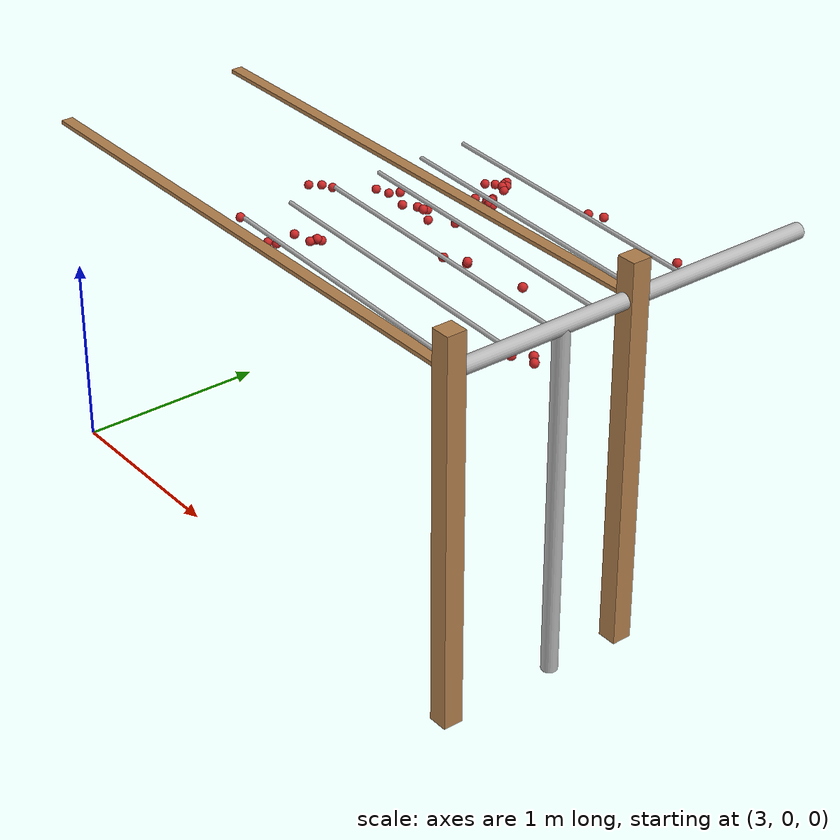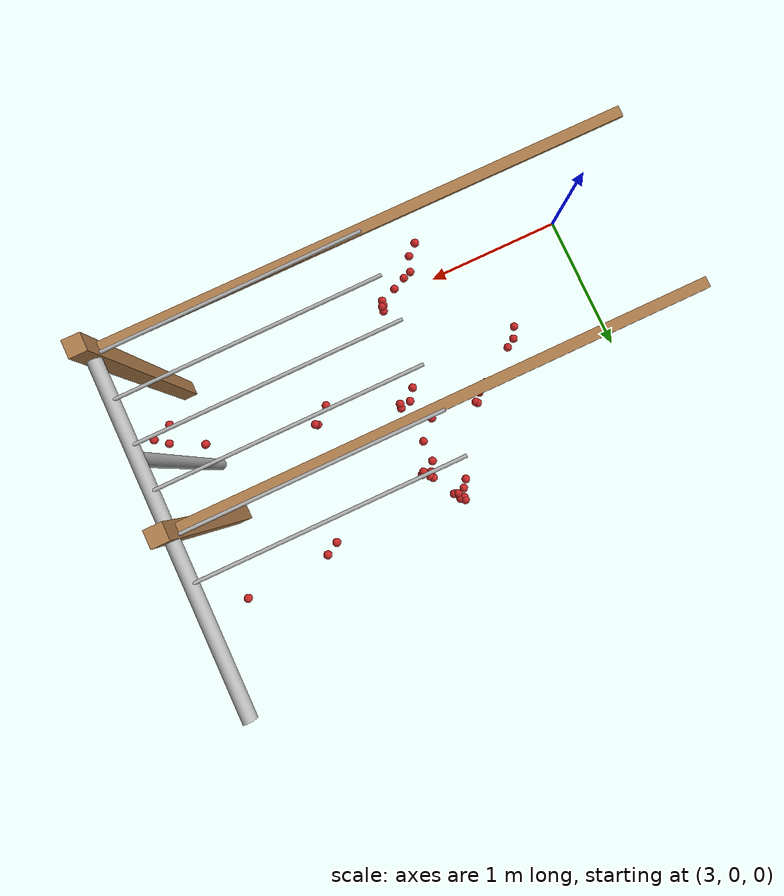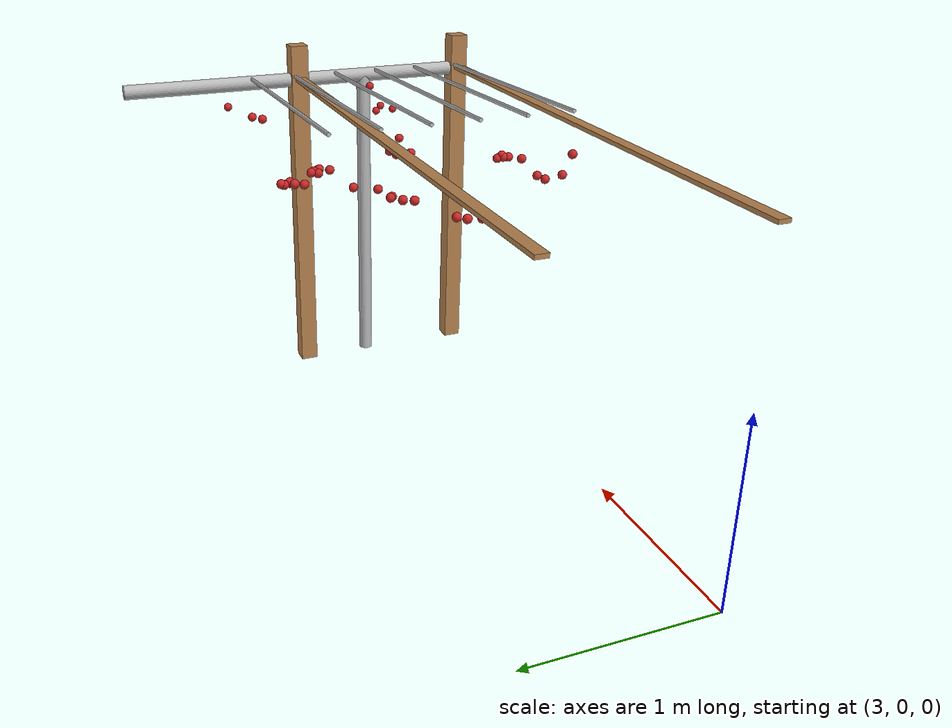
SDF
<sdf version="1.4">
 <model name="pergola">
  <include><name>post_12</name><pose>6.0 0.0 0 0 0 0</pose><uri>model://post</uri></include>
  <include><name>post_13</name><pose>6.0 1.0 0 0 0 0</pose><uri>model://post</uri></include>
  <link name="beam_6">
   <pose>4.5 0.0 1.81 0 0 0</pose>
   <collision name="collision"><geometry><box><size>3.0 0.06 0.02</size></box></geometry></collision>
   <visual name="visual">
    <geometry><box><size>3.0 0.06 0.02</size></box></geometry>
    <material>
     <script>
      <uri>model://post/materials/scripts</uri>
      <uri>model://post/materials/textures</uri>
      <name>Post/Wood</name>
     </script>
    </material>
   </visual>
   <inertial>
    <mass>5</mass>
    <inertia>
     <ixx>0.0016666666666666668</ixx>
     <ixy>0.0</ixy>
     <ixz>0.0</ixz>
     <iyy>3.7515</iyy>
     <iyz>0.0</iyz>
     <izz>3.750166666666667</izz>
    </inertia>
   </inertial>
  </link>
  <link name="beam_7">
   <pose>4.5 1.0 1.81 0 0 0</pose>
   <collision name="collision"><geometry><box><size>3.0 0.06 0.02</size></box></geometry></collision>
   <visual name="visual">
    <geometry><box><size>3.0 0.06 0.02</size></box></geometry>
    <material>
     <script>
      <uri>model://post/materials/scripts</uri>
      <uri>model://post/materials/textures</uri>
      <name>Post/Wood</name>
     </script>
    </material>
   </visual>
   <inertial>
    <mass>5</mass>
    <inertia>
     <ixx>0.0016666666666666668</ixx>
     <ixy>0.0</ixy>
     <ixz>0.0</ixz>
     <iyy>3.7515</iyy>
     <iyz>0.0</iyz>
     <izz>3.750166666666667</izz>
    </inertia>
   </inertial>
  </link>
  <include><name>tree_10</name><pose>6.0 0.6 0 0 0 0</pose><uri>model://tree_trunk</uri></include>
  <link name="baseBranch_10">
   <pose>6.0 0.5 1.8 1.5707963267948966 0 0</pose>
   <collision name="collision">
    <geometry><cylinder><radius>0.04</radius><length>1.0</length></cylinder></geometry>
   </collision>
   <visual name="visual">
    <geometry><cylinder><radius>0.04</radius><length>1.0</length></cylinder></geometry>
    <material>
     <script>
      <uri>model://tree_trunk/materials/scripts</uri>
      <uri>model://tree_trunk/materials/textures</uri>
      <name>Tree/Bark</name>
     </script>
    </material>
   </visual>
   <inertial>
    <mass>10</mass>
    <inertia>
     <ixx>0.8373333333333332</ixx>
     <ixy>0.0</ixy>
     <ixz>0.0</ixz>
     <iyy>0.8373333333333332</iyy>
     <iyz>0.0</iyz>
     <izz>0.008</izz>
    </inertia>
   </inertial>
  </link>
  <link name="baseBranch_11">
   <pose>6.0 1.5 1.8 1.5707963267948966 0 0</pose>
   <collision name="collision">
    <geometry><cylinder><radius>0.04</radius><length>1.0</length></cylinder></geometry>
   </collision>
   <visual name="visual">
    <geometry><cylinder><radius>0.04</radius><length>1.0</length></cylinder></geometry>
    <material>
     <script>
      <uri>model://tree_trunk/materials/scripts</uri>
      <uri>model://tree_trunk/materials/textures</uri>
      <name>Tree/Bark</name>
     </script>
    </material>
   </visual>
   <inertial>
    <mass>10</mass>
    <inertia>
     <ixx>0.8373333333333332</ixx>
     <ixy>0.0</ixy>
     <ixz>0.0</ixz>
     <iyy>0.8373333333333332</iyy>
     <iyz>0.0</iyz>
     <izz>0.008</izz>
    </inertia>
   </inertial>
  </link>
  <link name="vine_41">
   <pose>5.25 0.03 1.85 0 -1.5374753309166493 0</pose>
   <collision name="collision">
    <geometry><cylinder><radius>0.01</radius><length>1.5008331019803633</length></cylinder></geometry>
   </collision>
   <visual name="visual">
    <geometry><cylinder><radius>0.01</radius><length>1.5008331019803633</length></cylinder></geometry>
    <material>
     <script>
      <uri>model://tree_trunk/materials/scripts</uri>
      <uri>model://tree_trunk/materials/textures</uri>
      <name>Tree/Bark</name>
     </script>
    </material>
   </visual>
   <inertial>
    <mass>5</mass>
    <inertia>
     <ixx>0.9386666666666668</ixx>
     <ixy>0.0</ixy>
     <ixz>0.0</ixz>
     <iyy>0.9386666666666668</iyy>
     <iyz>0.0</iyz>
     <izz>0.00025</izz>
    </inertia>
   </inertial>
  </link>
  <link name="vine_43">
   <pose>5.25 0.28 1.85 0 -1.5374753309166493 0</pose>
   <collision name="collision">
    <geometry><cylinder><radius>0.01</radius><length>1.5008331019803633</length></cylinder></geometry>
   </collision>
   <visual name="visual">
    <geometry><cylinder><radius>0.01</radius><length>1.5008331019803633</length></cylinder></geometry>
    <material>
     <script>
      <uri>model://tree_trunk/materials/scripts</uri>
      <uri>model://tree_trunk/materials/textures</uri>
      <name>Tree/Bark</name>
     </script>
    </material>
   </visual>
   <inertial>
    <mass>5</mass>
    <inertia>
     <ixx>0.9386666666666668</ixx>
     <ixy>0.0</ixy>
     <ixz>0.0</ixz>
     <iyy>0.9386666666666668</iyy>
     <iyz>0.0</iyz>
     <izz>0.00025</izz>
    </inertia>
   </inertial>
  </link>
  <link name="vine_45">
   <pose>5.25 0.53 1.85 0 -1.5374753309166493 0</pose>
   <collision name="collision">
    <geometry><cylinder><radius>0.01</radius><length>1.5008331019803633</length></cylinder></geometry>
   </collision>
   <visual name="visual">
    <geometry><cylinder><radius>0.01</radius><length>1.5008331019803633</length></cylinder></geometry>
    <material>
     <script>
      <uri>model://tree_trunk/materials/scripts</uri>
      <uri>model://tree_trunk/materials/textures</uri>
      <name>Tree/Bark</name>
     </script>
    </material>
   </visual>
   <inertial>
    <mass>5</mass>
    <inertia>
     <ixx>0.9386666666666668</ixx>
     <ixy>0.0</ixy>
     <ixz>0.0</ixz>
     <iyy>0.9386666666666668</iyy>
     <iyz>0.0</iyz>
     <izz>0.00025</izz>
    </inertia>
   </inertial>
  </link>
  <link name="vine_47">
   <pose>5.25 0.78 1.85 0 -1.5374753309166493 0</pose>
   <collision name="collision">
    <geometry><cylinder><radius>0.01</radius><length>1.5008331019803633</length></cylinder></geometry>
   </collision>
   <visual name="visual">
    <geometry><cylinder><radius>0.01</radius><length>1.5008331019803633</length></cylinder></geometry>
    <material>
     <script>
      <uri>model://tree_trunk/materials/scripts</uri>
      <uri>model://tree_trunk/materials/textures</uri>
      <name>Tree/Bark</name>
     </script>
    </material>
   </visual>
   <inertial>
    <mass>5</mass>
    <inertia>
     <ixx>0.9386666666666668</ixx>
     <ixy>0.0</ixy>
     <ixz>0.0</ixz>
     <iyy>0.9386666666666668</iyy>
     <iyz>0.0</iyz>
     <izz>0.00025</izz>
    </inertia>
   </inertial>
  </link>
  <link name="vine_49">
   <pose>5.25 1.03 1.85 0 -1.5374753309166493 0</pose>
   <collision name="collision">
    <geometry><cylinder><radius>0.01</radius><length>1.5008331019803633</length></cylinder></geometry>
   </collision>
   <visual name="visual">
    <geometry><cylinder><radius>0.01</radius><length>1.5008331019803633</length></cylinder></geometry>
    <material>
     <script>
      <uri>model://tree_trunk/materials/scripts</uri>
      <uri>model://tree_trunk/materials/textures</uri>
      <name>Tree/Bark</name>
     </script>
    </material>
   </visual>
   <inertial>
    <mass>5</mass>
    <inertia>
     <ixx>0.9386666666666668</ixx>
     <ixy>0.0</ixy>
     <ixz>0.0</ixz>
     <iyy>0.9386666666666668</iyy>
     <iyz>0.0</iyz>
     <izz>0.00025</izz>
    </inertia>
   </inertial>
  </link>
  <link name="vine_51">
   <pose>5.25 1.28 1.85 0 -1.5374753309166493 0</pose>
   <collision name="collision">
    <geometry><cylinder><radius>0.01</radius><length>1.5008331019803633</length></cylinder></geometry>
   </collision>
   <visual name="visual">
    <geometry><cylinder><radius>0.01</radius><length>1.5008331019803633</length></cylinder></geometry>
    <material>
     <script>
      <uri>model://tree_trunk/materials/scripts</uri>
      <uri>model://tree_trunk/materials/textures</uri>
      <name>Tree/Bark</name>
     </script>
    </material>
   </visual>
   <inertial>
    <mass>5</mass>
    <inertia>
     <ixx>0.9386666666666668</ixx>
     <ixy>0.0</ixy>
     <ixz>0.0</ixz>
     <iyy>0.9386666666666668</iyy>
     <iyz>0.0</iyz>
     <izz>0.00025</izz>
    </inertia>
   </inertial>
  </link>
  <link name="fruit_0">
   <pose>4.536340396912649 1.390254091323973 1.6435859966985762 0 0 0</pose>
   <collision name="fruit_collision_0"><geometry><sphere><radius>0.022</radius></sphere></geometry></collision>
   <visual name="visual">
    <geometry><sphere><radius>0.022</radius></sphere></geometry>
    <material><script><name>Gazebo/Red</name></script></material>
   </visual>
   <inertial>
    <mass>0.05</mass>
    <inertia>
     <ixx>9.679999999999999e-06</ixx>
     <ixy>0.0</ixy>
     <ixz>0.0</ixz>
     <iyy>9.679999999999999e-06</iyy>
     <iyz>0.0</iyz>
     <izz>9.679999999999999e-06</izz>
    </inertia>
   </inertial>
   <sensor name="fruit_contact_0" type="contact">
    <plugin name="contact_plugin_0" filename="libcontact_plugin.so"/>
    <contact><collision>fruit_collision_0</collision><topic>fruit_contact_topic_0</topic></contact>
   </sensor>
  </link>
  <link name="fruit_6">
   <pose>4.557173968095447 1.0254769971802615 1.5728894142203917 0 0 0</pose>
   <collision name="fruit_collision_6"><geometry><sphere><radius>0.022</radius></sphere></geometry></collision>
   <visual name="visual">
    <geometry><sphere><radius>0.022</radius></sphere></geometry>
    <material><script><name>Gazebo/Red</name></script></material>
   </visual>
   <inertial>
    <mass>0.05</mass>
    <inertia>
     <ixx>9.679999999999999e-06</ixx>
     <ixy>0.0</ixy>
     <ixz>0.0</ixz>
     <iyy>9.679999999999999e-06</iyy>
     <iyz>0.0</iyz>
     <izz>9.679999999999999e-06</izz>
    </inertia>
   </inertial>
   <sensor name="fruit_contact_6" type="contact">
    <plugin name="contact_plugin_6" filename="libcontact_plugin.so"/>
    <contact><collision>fruit_collision_6</collision><topic>fruit_contact_topic_6</topic></contact>
   </sensor>
  </link>
  <link name="fruit_31">
   <pose>3.9504646056138872 0.7670344150273081 1.598763864469165 0 0 0</pose>
   <collision name="fruit_collision_31"><geometry><sphere><radius>0.022</radius></sphere></geometry></collision>
   <visual name="visual">
    <geometry><sphere><radius>0.022</radius></sphere></geometry>
    <material><script><name>Gazebo/Red</name></script></material>
   </visual>
   <inertial>
    <mass>0.05</mass>
    <inertia>
     <ixx>9.679999999999999e-06</ixx>
     <ixy>0.0</ixy>
     <ixz>0.0</ixz>
     <iyy>9.679999999999999e-06</iyy>
     <iyz>0.0</iyz>
     <izz>9.679999999999999e-06</izz>
    </inertia>
   </inertial>
   <sensor name="fruit_contact_31" type="contact">
    <plugin name="contact_plugin_31" filename="libcontact_plugin.so"/>
    <contact><collision>fruit_collision_31</collision><topic>fruit_contact_topic_31</topic></contact>
   </sensor>
  </link>
  <link name="fruit_43">
   <pose>4.590088718177892 0.8480623366707825 1.7226505633862461 0 0 0</pose>
   <collision name="fruit_collision_43"><geometry><sphere><radius>0.022</radius></sphere></geometry></collision>
   <visual name="visual">
    <geometry><sphere><radius>0.022</radius></sphere></geometry>
    <material><script><name>Gazebo/Red</name></script></material>
   </visual>
   <inertial>
    <mass>0.05</mass>
    <inertia>
     <ixx>9.679999999999999e-06</ixx>
     <ixy>0.0</ixy>
     <ixz>0.0</ixz>
     <iyy>9.679999999999999e-06</iyy>
     <iyz>0.0</iyz>
     <izz>9.679999999999999e-06</izz>
    </inertia>
   </inertial>
   <sensor name="fruit_contact_43" type="contact">
    <plugin name="contact_plugin_43" filename="libcontact_plugin.so"/>
    <contact><collision>fruit_collision_43</collision><topic>fruit_contact_topic_43</topic></contact>
   </sensor>
  </link>
  <link name="fruit_67">
   <pose>4.218156637458302 0.9745999674591149 1.617648366810899 0 0 0</pose>
   <collision name="fruit_collision_67"><geometry><sphere><radius>0.022</radius></sphere></geometry></collision>
   <visual name="visual">
    <geometry><sphere><radius>0.022</radius></sphere></geometry>
    <material><script><name>Gazebo/Red</name></script></material>
   </visual>
   <inertial>
    <mass>0.05</mass>
    <inertia>
     <ixx>9.679999999999999e-06</ixx>
     <ixy>0.0</ixy>
     <ixz>0.0</ixz>
     <iyy>9.679999999999999e-06</iyy>
     <iyz>0.0</iyz>
     <izz>9.679999999999999e-06</izz>
    </inertia>
   </inertial>
   <sensor name="fruit_contact_67" type="contact">
    <plugin name="contact_plugin_67" filename="libcontact_plugin.so"/>
    <contact><collision>fruit_collision_67</collision><topic>fruit_contact_topic_67</topic></contact>
   </sensor>
  </link>
  <link name="fruit_70">
   <pose>5.790580874859005 1.4650014653790482 1.722095825788862 0 0 0</pose>
   <collision name="fruit_collision_70"><geometry><sphere><radius>0.022</radius></sphere></geometry></collision>
   <visual name="visual">
    <geometry><sphere><radius>0.022</radius></sphere></geometry>
    <material><script><name>Gazebo/Red</name></script></material>
   </visual>
   <inertial>
    <mass>0.05</mass>
    <inertia>
     <ixx>9.679999999999999e-06</ixx>
     <ixy>0.0</ixy>
     <ixz>0.0</ixz>
     <iyy>9.679999999999999e-06</iyy>
     <iyz>0.0</iyz>
     <izz>9.679999999999999e-06</izz>
    </inertia>
   </inertial>
   <sensor name="fruit_contact_70" type="contact">
    <plugin name="contact_plugin_70" filename="libcontact_plugin.so"/>
    <contact><collision>fruit_collision_70</collision><topic>fruit_contact_topic_70</topic></contact>
   </sensor>
  </link>
  <link name="fruit_81">
   <pose>4.452699489035045 0.3287309197787381 1.6790263831889802 0 0 0</pose>
   <collision name="fruit_collision_81"><geometry><sphere><radius>0.022</radius></sphere></geometry></collision>
   <visual name="visual">
    <geometry><sphere><radius>0.022</radius></sphere></geometry>
    <material><script><name>Gazebo/Red</name></script></material>
   </visual>
   <inertial>
    <mass>0.05</mass>
    <inertia>
     <ixx>9.679999999999999e-06</ixx>
     <ixy>0.0</ixy>
     <ixz>0.0</ixz>
     <iyy>9.679999999999999e-06</iyy>
     <iyz>0.0</iyz>
     <izz>9.679999999999999e-06</izz>
    </inertia>
   </inertial>
   <sensor name="fruit_contact_81" type="contact">
    <plugin name="contact_plugin_81" filename="libcontact_plugin.so"/>
    <contact><collision>fruit_collision_81</collision><topic>fruit_contact_topic_81</topic></contact>
   </sensor>
  </link>
  <link name="fruit_98">
   <pose>5.6560906467203855 0.6778595368700595 1.807412006815864 0 0 0</pose>
   <collision name="fruit_collision_98"><geometry><sphere><radius>0.022</radius></sphere></geometry></collision>
   <visual name="visual">
    <geometry><sphere><radius>0.022</radius></sphere></geometry>
    <material><script><name>Gazebo/Red</name></script></material>
   </visual>
   <inertial>
    <mass>0.05</mass>
    <inertia>
     <ixx>9.679999999999999e-06</ixx>
     <ixy>0.0</ixy>
     <ixz>0.0</ixz>
     <iyy>9.679999999999999e-06</iyy>
     <iyz>0.0</iyz>
     <izz>9.679999999999999e-06</izz>
    </inertia>
   </inertial>
   <sensor name="fruit_contact_98" type="contact">
    <plugin name="contact_plugin_98" filename="libcontact_plugin.so"/>
    <contact><collision>fruit_collision_98</collision><topic>fruit_contact_topic_98</topic></contact>
   </sensor>
  </link>
  <link name="fruit_106">
   <pose>5.2661704986761375 1.398038553955731 1.7731663716994246 0 0 0</pose>
   <collision name="fruit_collision_106"><geometry><sphere><radius>0.022</radius></sphere></geometry></collision>
   <visual name="visual">
    <geometry><sphere><radius>0.022</radius></sphere></geometry>
    <material><script><name>Gazebo/Red</name></script></material>
   </visual>
   <inertial>
    <mass>0.05</mass>
    <inertia>
     <ixx>9.679999999999999e-06</ixx>
     <ixy>0.0</ixy>
     <ixz>0.0</ixz>
     <iyy>9.679999999999999e-06</iyy>
     <iyz>0.0</iyz>
     <izz>9.679999999999999e-06</izz>
    </inertia>
   </inertial>
   <sensor name="fruit_contact_106" type="contact">
    <plugin name="contact_plugin_106" filename="libcontact_plugin.so"/>
    <contact><collision>fruit_collision_106</collision><topic>fruit_contact_topic_106</topic></contact>
   </sensor>
  </link>
  <link name="fruit_115">
   <pose>4.258637541013665 0.16509584543049788 1.738635943889402 0 0 0</pose>
   <collision name="fruit_collision_115"><geometry><sphere><radius>0.022</radius></sphere></geometry></collision>
   <visual name="visual">
    <geometry><sphere><radius>0.022</radius></sphere></geometry>
    <material><script><name>Gazebo/Red</name></script></material>
   </visual>
   <inertial>
    <mass>0.05</mass>
    <inertia>
     <ixx>9.679999999999999e-06</ixx>
     <ixy>0.0</ixy>
     <ixz>0.0</ixz>
     <iyy>9.679999999999999e-06</iyy>
     <iyz>0.0</iyz>
     <izz>9.679999999999999e-06</izz>
    </inertia>
   </inertial>
   <sensor name="fruit_contact_115" type="contact">
    <plugin name="contact_plugin_115" filename="libcontact_plugin.so"/>
    <contact><collision>fruit_collision_115</collision><topic>fruit_contact_topic_115</topic></contact>
   </sensor>
  </link>
  <link name="fruit_123">
   <pose>5.8274535534884615 0.4762061929253603 1.6206344059974054 0 0 0</pose>
   <collision name="fruit_collision_123"><geometry><sphere><radius>0.022</radius></sphere></geometry></collision>
   <visual name="visual">
    <geometry><sphere><radius>0.022</radius></sphere></geometry>
    <material><script><name>Gazebo/Red</name></script></material>
   </visual>
   <inertial>
    <mass>0.05</mass>
    <inertia>
     <ixx>9.679999999999999e-06</ixx>
     <ixy>0.0</ixy>
     <ixz>0.0</ixz>
     <iyy>9.679999999999999e-06</iyy>
     <iyz>0.0</iyz>
     <izz>9.679999999999999e-06</izz>
    </inertia>
   </inertial>
   <sensor name="fruit_contact_123" type="contact">
    <plugin name="contact_plugin_123" filename="libcontact_plugin.so"/>
    <contact><collision>fruit_collision_123</collision><topic>fruit_contact_topic_123</topic></contact>
   </sensor>
  </link>
  <link name="fruit_124">
   <pose>4.65477615581713 1.2319767077433876 1.6615284143996276 0 0 0</pose>
   <collision name="fruit_collision_124"><geometry><sphere><radius>0.022</radius></sphere></geometry></collision>
   <visual name="visual">
    <geometry><sphere><radius>0.022</radius></sphere></geometry>
    <material><script><name>Gazebo/Red</name></script></material>
   </visual>
   <inertial>
    <mass>0.05</mass>
    <inertia>
     <ixx>9.679999999999999e-06</ixx>
     <ixy>0.0</ixy>
     <ixz>0.0</ixz>
     <iyy>9.679999999999999e-06</iyy>
     <iyz>0.0</iyz>
     <izz>9.679999999999999e-06</izz>
    </inertia>
   </inertial>
   <sensor name="fruit_contact_124" type="contact">
    <plugin name="contact_plugin_124" filename="libcontact_plugin.so"/>
    <contact><collision>fruit_collision_124</collision><topic>fruit_contact_topic_124</topic></contact>
   </sensor>
  </link>
  <link name="fruit_140">
   <pose>4.3010876549452535 0.18798401500025824 1.6277305806875937 0 0 0</pose>
   <collision name="fruit_collision_140"><geometry><sphere><radius>0.022</radius></sphere></geometry></collision>
   <visual name="visual">
    <geometry><sphere><radius>0.022</radius></sphere></geometry>
    <material><script><name>Gazebo/Red</name></script></material>
   </visual>
   <inertial>
    <mass>0.05</mass>
    <inertia>
     <ixx>9.679999999999999e-06</ixx>
     <ixy>0.0</ixy>
     <ixz>0.0</ixz>
     <iyy>9.679999999999999e-06</iyy>
     <iyz>0.0</iyz>
     <izz>9.679999999999999e-06</izz>
    </inertia>
   </inertial>
   <sensor name="fruit_contact_140" type="contact">
    <plugin name="contact_plugin_140" filename="libcontact_plugin.so"/>
    <contact><collision>fruit_collision_140</collision><topic>fruit_contact_topic_140</topic></contact>
   </sensor>
  </link>
  <link name="fruit_143">
   <pose>5.035777075172633 0.737087797372966 1.670789855977357 0 0 0</pose>
   <collision name="fruit_collision_143"><geometry><sphere><radius>0.022</radius></sphere></geometry></collision>
   <visual name="visual">
    <geometry><sphere><radius>0.022</radius></sphere></geometry>
    <material><script><name>Gazebo/Red</name></script></material>
   </visual>
   <inertial>
    <mass>0.05</mass>
    <inertia>
     <ixx>9.679999999999999e-06</ixx>
     <ixy>0.0</ixy>
     <ixz>0.0</ixz>
     <iyy>9.679999999999999e-06</iyy>
     <iyz>0.0</iyz>
     <izz>9.679999999999999e-06</izz>
    </inertia>
   </inertial>
   <sensor name="fruit_contact_143" type="contact">
    <plugin name="contact_plugin_143" filename="libcontact_plugin.so"/>
    <contact><collision>fruit_collision_143</collision><topic>fruit_contact_topic_143</topic></contact>
   </sensor>
  </link>
  <link name="fruit_161">
   <pose>4.73421705316743 1.273808557593959 1.640582860156314 0 0 0</pose>
   <collision name="fruit_collision_161"><geometry><sphere><radius>0.022</radius></sphere></geometry></collision>
   <visual name="visual">
    <geometry><sphere><radius>0.022</radius></sphere></geometry>
    <material><script><name>Gazebo/Red</name></script></material>
   </visual>
   <inertial>
    <mass>0.05</mass>
    <inertia>
     <ixx>9.679999999999999e-06</ixx>
     <ixy>0.0</ixy>
     <ixz>0.0</ixz>
     <iyy>9.679999999999999e-06</iyy>
     <iyz>0.0</iyz>
     <izz>9.679999999999999e-06</izz>
    </inertia>
   </inertial>
   <sensor name="fruit_contact_161" type="contact">
    <plugin name="contact_plugin_161" filename="libcontact_plugin.so"/>
    <contact><collision>fruit_collision_161</collision><topic>fruit_contact_topic_161</topic></contact>
   </sensor>
  </link>
  <link name="fruit_165">
   <pose>4.698258462255275 1.2992535426343224 1.6499621287288888 0 0 0</pose>
   <collision name="fruit_collision_165"><geometry><sphere><radius>0.022</radius></sphere></geometry></collision>
   <visual name="visual">
    <geometry><sphere><radius>0.022</radius></sphere></geometry>
    <material><script><name>Gazebo/Red</name></script></material>
   </visual>
   <inertial>
    <mass>0.05</mass>
    <inertia>
     <ixx>9.679999999999999e-06</ixx>
     <ixy>0.0</ixy>
     <ixz>0.0</ixz>
     <iyy>9.679999999999999e-06</iyy>
     <iyz>0.0</iyz>
     <izz>9.679999999999999e-06</izz>
    </inertia>
   </inertial>
   <sensor name="fruit_contact_165" type="contact">
    <plugin name="contact_plugin_165" filename="libcontact_plugin.so"/>
    <contact><collision>fruit_collision_165</collision><topic>fruit_contact_topic_165</topic></contact>
   </sensor>
  </link>
  <link name="fruit_176">
   <pose>4.583161995058661 1.4725327623444404 1.636039642631453 0 0 0</pose>
   <collision name="fruit_collision_176"><geometry><sphere><radius>0.022</radius></sphere></geometry></collision>
   <visual name="visual">
    <geometry><sphere><radius>0.022</radius></sphere></geometry>
    <material><script><name>Gazebo/Red</name></script></material>
   </visual>
   <inertial>
    <mass>0.05</mass>
    <inertia>
     <ixx>9.679999999999999e-06</ixx>
     <ixy>0.0</ixy>
     <ixz>0.0</ixz>
     <iyy>9.679999999999999e-06</iyy>
     <iyz>0.0</iyz>
     <izz>9.679999999999999e-06</izz>
    </inertia>
   </inertial>
   <sensor name="fruit_contact_176" type="contact">
    <plugin name="contact_plugin_176" filename="libcontact_plugin.so"/>
    <contact><collision>fruit_collision_176</collision><topic>fruit_contact_topic_176</topic></contact>
   </sensor>
  </link>
  <link name="fruit_205">
   <pose>5.932924252987963 0.5149192139350667 1.6193354070766648 0 0 0</pose>
   <collision name="fruit_collision_205"><geometry><sphere><radius>0.022</radius></sphere></geometry></collision>
   <visual name="visual">
    <geometry><sphere><radius>0.022</radius></sphere></geometry>
    <material><script><name>Gazebo/Red</name></script></material>
   </visual>
   <inertial>
    <mass>0.05</mass>
    <inertia>
     <ixx>9.679999999999999e-06</ixx>
     <ixy>0.0</ixy>
     <ixz>0.0</ixz>
     <iyy>9.679999999999999e-06</iyy>
     <iyz>0.0</iyz>
     <izz>9.679999999999999e-06</izz>
    </inertia>
   </inertial>
   <sensor name="fruit_contact_205" type="contact">
    <plugin name="contact_plugin_205" filename="libcontact_plugin.so"/>
    <contact><collision>fruit_collision_205</collision><topic>fruit_contact_topic_205</topic></contact>
   </sensor>
  </link>
  <link name="fruit_216">
   <pose>4.720801406269431 1.264025105877413 1.6501163953008036 0 0 0</pose>
   <collision name="fruit_collision_216"><geometry><sphere><radius>0.022</radius></sphere></geometry></collision>
   <visual name="visual">
    <geometry><sphere><radius>0.022</radius></sphere></geometry>
    <material><script><name>Gazebo/Red</name></script></material>
   </visual>
   <inertial>
    <mass>0.05</mass>
    <inertia>
     <ixx>9.679999999999999e-06</ixx>
     <ixy>0.0</ixy>
     <ixz>0.0</ixz>
     <iyy>9.679999999999999e-06</iyy>
     <iyz>0.0</iyz>
     <izz>9.679999999999999e-06</izz>
    </inertia>
   </inertial>
   <sensor name="fruit_contact_216" type="contact">
    <plugin name="contact_plugin_216" filename="libcontact_plugin.so"/>
    <contact><collision>fruit_collision_216</collision><topic>fruit_contact_topic_216</topic></contact>
   </sensor>
  </link>
  <link name="fruit_222">
   <pose>4.603689969336437 1.440621884349545 1.6398723047849473 0 0 0</pose>
   <collision name="fruit_collision_222"><geometry><sphere><radius>0.022</radius></sphere></geometry></collision>
   <visual name="visual">
    <geometry><sphere><radius>0.022</radius></sphere></geometry>
    <material><script><name>Gazebo/Red</name></script></material>
   </visual>
   <inertial>
    <mass>0.05</mass>
    <inertia>
     <ixx>9.679999999999999e-06</ixx>
     <ixy>0.0</ixy>
     <ixz>0.0</ixz>
     <iyy>9.679999999999999e-06</iyy>
     <iyz>0.0</iyz>
     <izz>9.679999999999999e-06</izz>
    </inertia>
   </inertial>
   <sensor name="fruit_contact_222" type="contact">
    <plugin name="contact_plugin_222" filename="libcontact_plugin.so"/>
    <contact><collision>fruit_collision_222</collision><topic>fruit_contact_topic_222</topic></contact>
   </sensor>
  </link>
  <link name="fruit_234">
   <pose>4.55349724672071 0.4091719732321616 1.6616996373902397 0 0 0</pose>
   <collision name="fruit_collision_234"><geometry><sphere><radius>0.022</radius></sphere></geometry></collision>
   <visual name="visual">
    <geometry><sphere><radius>0.022</radius></sphere></geometry>
    <material><script><name>Gazebo/Red</name></script></material>
   </visual>
   <inertial>
    <mass>0.05</mass>
    <inertia>
     <ixx>9.679999999999999e-06</ixx>
     <ixy>0.0</ixy>
     <ixz>0.0</ixz>
     <iyy>9.679999999999999e-06</iyy>
     <iyz>0.0</iyz>
     <izz>9.679999999999999e-06</izz>
    </inertia>
   </inertial>
   <sensor name="fruit_contact_234" type="contact">
    <plugin name="contact_plugin_234" filename="libcontact_plugin.so"/>
    <contact><collision>fruit_collision_234</collision><topic>fruit_contact_topic_234</topic></contact>
   </sensor>
  </link>
  <link name="fruit_254">
   <pose>4.6027114192234535 1.4709926063785155 1.6326119493209423 0 0 0</pose>
   <collision name="fruit_collision_254"><geometry><sphere><radius>0.022</radius></sphere></geometry></collision>
   <visual name="visual">
    <geometry><sphere><radius>0.022</radius></sphere></geometry>
    <material><script><name>Gazebo/Red</name></script></material>
   </visual>
   <inertial>
    <mass>0.05</mass>
    <inertia>
     <ixx>9.679999999999999e-06</ixx>
     <ixy>0.0</ixy>
     <ixz>0.0</ixz>
     <iyy>9.679999999999999e-06</iyy>
     <iyz>0.0</iyz>
     <izz>9.679999999999999e-06</izz>
    </inertia>
   </inertial>
   <sensor name="fruit_contact_254" type="contact">
    <plugin name="contact_plugin_254" filename="libcontact_plugin.so"/>
    <contact><collision>fruit_collision_254</collision><topic>fruit_contact_topic_254</topic></contact>
   </sensor>
  </link>
  <link name="fruit_260">
   <pose>4.686979556477964 1.3131654523019902 1.647405824326529 0 0 0</pose>
   <collision name="fruit_collision_260"><geometry><sphere><radius>0.022</radius></sphere></geometry></collision>
   <visual name="visual">
    <geometry><sphere><radius>0.022</radius></sphere></geometry>
    <material><script><name>Gazebo/Red</name></script></material>
   </visual>
   <inertial>
    <mass>0.05</mass>
    <inertia>
     <ixx>9.679999999999999e-06</ixx>
     <ixy>0.0</ixy>
     <ixz>0.0</ixz>
     <iyy>9.679999999999999e-06</iyy>
     <iyz>0.0</iyz>
     <izz>9.679999999999999e-06</izz>
    </inertia>
   </inertial>
   <sensor name="fruit_contact_260" type="contact">
    <plugin name="contact_plugin_260" filename="libcontact_plugin.so"/>
    <contact><collision>fruit_collision_260</collision><topic>fruit_contact_topic_260</topic></contact>
   </sensor>
  </link>
  <link name="fruit_261">
   <pose>4.683874457740906 0.8976832773456569 1.7207177576505186 0 0 0</pose>
   <collision name="fruit_collision_261"><geometry><sphere><radius>0.022</radius></sphere></geometry></collision>
   <visual name="visual">
    <geometry><sphere><radius>0.022</radius></sphere></geometry>
    <material><script><name>Gazebo/Red</name></script></material>
   </visual>
   <inertial>
    <mass>0.05</mass>
    <inertia>
     <ixx>9.679999999999999e-06</ixx>
     <ixy>0.0</ixy>
     <ixz>0.0</ixz>
     <iyy>9.679999999999999e-06</iyy>
     <iyz>0.0</iyz>
     <izz>9.679999999999999e-06</izz>
    </inertia>
   </inertial>
   <sensor name="fruit_contact_261" type="contact">
    <plugin name="contact_plugin_261" filename="libcontact_plugin.so"/>
    <contact><collision>fruit_collision_261</collision><topic>fruit_contact_topic_261</topic></contact>
   </sensor>
  </link>
  <link name="fruit_263">
   <pose>4.631053808061058 0.9051566976747215 1.7104202370812733 0 0 0</pose>
   <collision name="fruit_collision_263"><geometry><sphere><radius>0.022</radius></sphere></geometry></collision>
   <visual name="visual">
    <geometry><sphere><radius>0.022</radius></sphere></geometry>
    <material><script><name>Gazebo/Red</name></script></material>
   </visual>
   <inertial>
    <mass>0.05</mass>
    <inertia>
     <ixx>9.679999999999999e-06</ixx>
     <ixy>0.0</ixy>
     <ixz>0.0</ixz>
     <iyy>9.679999999999999e-06</iyy>
     <iyz>0.0</iyz>
     <izz>9.679999999999999e-06</izz>
    </inertia>
   </inertial>
   <sensor name="fruit_contact_263" type="contact">
    <plugin name="contact_plugin_263" filename="libcontact_plugin.so"/>
    <contact><collision>fruit_collision_263</collision><topic>fruit_contact_topic_263</topic></contact>
   </sensor>
  </link>
  <link name="fruit_264">
   <pose>4.542065059847306 0.38122276365594315 1.668805790609467 0 0 0</pose>
   <collision name="fruit_collision_264"><geometry><sphere><radius>0.022</radius></sphere></geometry></collision>
   <visual name="visual">
    <geometry><sphere><radius>0.022</radius></sphere></geometry>
    <material><script><name>Gazebo/Red</name></script></material>
   </visual>
   <inertial>
    <mass>0.05</mass>
    <inertia>
     <ixx>9.679999999999999e-06</ixx>
     <ixy>0.0</ixy>
     <ixz>0.0</ixz>
     <iyy>9.679999999999999e-06</iyy>
     <iyz>0.0</iyz>
     <izz>9.679999999999999e-06</izz>
    </inertia>
   </inertial>
   <sensor name="fruit_contact_264" type="contact">
    <plugin name="contact_plugin_264" filename="libcontact_plugin.so"/>
    <contact><collision>fruit_collision_264</collision><topic>fruit_contact_topic_264</topic></contact>
   </sensor>
  </link>
  <link name="fruit_289">
   <pose>4.62344662143012 1.4351494282624842 1.6284097780753821 0 0 0</pose>
   <collision name="fruit_collision_289"><geometry><sphere><radius>0.022</radius></sphere></geometry></collision>
   <visual name="visual">
    <geometry><sphere><radius>0.022</radius></sphere></geometry>
    <material><script><name>Gazebo/Red</name></script></material>
   </visual>
   <inertial>
    <mass>0.05</mass>
    <inertia>
     <ixx>9.679999999999999e-06</ixx>
     <ixy>0.0</ixy>
     <ixz>0.0</ixz>
     <iyy>9.679999999999999e-06</iyy>
     <iyz>0.0</iyz>
     <izz>9.679999999999999e-06</izz>
    </inertia>
   </inertial>
   <sensor name="fruit_contact_289" type="contact">
    <plugin name="contact_plugin_289" filename="libcontact_plugin.so"/>
    <contact><collision>fruit_collision_289</collision><topic>fruit_contact_topic_289</topic></contact>
   </sensor>
  </link>
  <link name="fruit_290">
   <pose>4.305290852530771 1.0558662838685149 1.6136421088463704 0 0 0</pose>
   <collision name="fruit_collision_290"><geometry><sphere><radius>0.022</radius></sphere></geometry></collision>
   <visual name="visual">
    <geometry><sphere><radius>0.022</radius></sphere></geometry>
    <material><script><name>Gazebo/Red</name></script></material>
   </visual>
   <inertial>
    <mass>0.05</mass>
    <inertia>
     <ixx>9.679999999999999e-06</ixx>
     <ixy>0.0</ixy>
     <ixz>0.0</ixz>
     <iyy>9.679999999999999e-06</iyy>
     <iyz>0.0</iyz>
     <izz>9.679999999999999e-06</izz>
    </inertia>
   </inertial>
   <sensor name="fruit_contact_290" type="contact">
    <plugin name="contact_plugin_290" filename="libcontact_plugin.so"/>
    <contact><collision>fruit_collision_290</collision><topic>fruit_contact_topic_290</topic></contact>
   </sensor>
  </link>
  <link name="fruit_301">
   <pose>5.332025255297936 1.4353494240387308 1.7718518058089852 0 0 0</pose>
   <collision name="fruit_collision_301"><geometry><sphere><radius>0.022</radius></sphere></geometry></collision>
   <visual name="visual">
    <geometry><sphere><radius>0.022</radius></sphere></geometry>
    <material><script><name>Gazebo/Red</name></script></material>
   </visual>
   <inertial>
    <mass>0.05</mass>
    <inertia>
     <ixx>9.679999999999999e-06</ixx>
     <ixy>0.0</ixy>
     <ixz>0.0</ixz>
     <iyy>9.679999999999999e-06</iyy>
     <iyz>0.0</iyz>
     <izz>9.679999999999999e-06</izz>
    </inertia>
   </inertial>
   <sensor name="fruit_contact_301" type="contact">
    <plugin name="contact_plugin_301" filename="libcontact_plugin.so"/>
    <contact><collision>fruit_collision_301</collision><topic>fruit_contact_topic_301</topic></contact>
   </sensor>
  </link>
  <link name="fruit_308">
   <pose>4.32923947944087 0.2634764834012775 1.6064151168433123 0 0 0</pose>
   <collision name="fruit_collision_308"><geometry><sphere><radius>0.022</radius></sphere></geometry></collision>
   <visual name="visual">
    <geometry><sphere><radius>0.022</radius></sphere></geometry>
    <material><script><name>Gazebo/Red</name></script></material>
   </visual>
   <inertial>
    <mass>0.05</mass>
    <inertia>
     <ixx>9.679999999999999e-06</ixx>
     <ixy>0.0</ixy>
     <ixz>0.0</ixz>
     <iyy>9.679999999999999e-06</iyy>
     <iyz>0.0</iyz>
     <izz>9.679999999999999e-06</izz>
    </inertia>
   </inertial>
   <sensor name="fruit_contact_308" type="contact">
    <plugin name="contact_plugin_308" filename="libcontact_plugin.so"/>
    <contact><collision>fruit_collision_308</collision><topic>fruit_contact_topic_308</topic></contact>
   </sensor>
  </link>
  <link name="fruit_317">
   <pose>4.550355446396434 0.38722254712966253 1.6763882863643 0 0 0</pose>
   <collision name="fruit_collision_317"><geometry><sphere><radius>0.022</radius></sphere></geometry></collision>
   <visual name="visual">
    <geometry><sphere><radius>0.022</radius></sphere></geometry>
    <material><script><name>Gazebo/Red</name></script></material>
   </visual>
   <inertial>
    <mass>0.05</mass>
    <inertia>
     <ixx>9.679999999999999e-06</ixx>
     <ixy>0.0</ixy>
     <ixz>0.0</ixz>
     <iyy>9.679999999999999e-06</iyy>
     <iyz>0.0</iyz>
     <izz>9.679999999999999e-06</izz>
    </inertia>
   </inertial>
   <sensor name="fruit_contact_317" type="contact">
    <plugin name="contact_plugin_317" filename="libcontact_plugin.so"/>
    <contact><collision>fruit_collision_317</collision><topic>fruit_contact_topic_317</topic></contact>
   </sensor>
  </link>
  <link name="fruit_340">
   <pose>5.117512780051942 0.8091363283221893 1.649351307214359 0 0 0</pose>
   <collision name="fruit_collision_340"><geometry><sphere><radius>0.022</radius></sphere></geometry></collision>
   <visual name="visual">
    <geometry><sphere><radius>0.022</radius></sphere></geometry>
    <material><script><name>Gazebo/Red</name></script></material>
   </visual>
   <inertial>
    <mass>0.05</mass>
    <inertia>
     <ixx>9.679999999999999e-06</ixx>
     <ixy>0.0</ixy>
     <ixz>0.0</ixz>
     <iyy>9.679999999999999e-06</iyy>
     <iyz>0.0</iyz>
     <izz>9.679999999999999e-06</izz>
    </inertia>
   </inertial>
   <sensor name="fruit_contact_340" type="contact">
    <plugin name="contact_plugin_340" filename="libcontact_plugin.so"/>
    <contact><collision>fruit_collision_340</collision><topic>fruit_contact_topic_340</topic></contact>
   </sensor>
  </link>
  <link name="fruit_353">
   <pose>4.583944708390656 1.4862123036857118 1.641440700964095 0 0 0</pose>
   <collision name="fruit_collision_353"><geometry><sphere><radius>0.022</radius></sphere></geometry></collision>
   <visual name="visual">
    <geometry><sphere><radius>0.022</radius></sphere></geometry>
    <material><script><name>Gazebo/Red</name></script></material>
   </visual>
   <inertial>
    <mass>0.05</mass>
    <inertia>
     <ixx>9.679999999999999e-06</ixx>
     <ixy>0.0</ixy>
     <ixz>0.0</ixz>
     <iyy>9.679999999999999e-06</iyy>
     <iyz>0.0</iyz>
     <izz>9.679999999999999e-06</izz>
    </inertia>
   </inertial>
   <sensor name="fruit_contact_353" type="contact">
    <plugin name="contact_plugin_353" filename="libcontact_plugin.so"/>
    <contact><collision>fruit_collision_353</collision><topic>fruit_contact_topic_353</topic></contact>
   </sensor>
  </link>
  <link name="fruit_373">
   <pose>4.566052904299405 1.4283464452139367 1.6410774513826105 0 0 0</pose>
   <collision name="fruit_collision_373"><geometry><sphere><radius>0.022</radius></sphere></geometry></collision>
   <visual name="visual">
    <geometry><sphere><radius>0.022</radius></sphere></geometry>
    <material><script><name>Gazebo/Red</name></script></material>
   </visual>
   <inertial>
    <mass>0.05</mass>
    <inertia>
     <ixx>9.679999999999999e-06</ixx>
     <ixy>0.0</ixy>
     <ixz>0.0</ixz>
     <iyy>9.679999999999999e-06</iyy>
     <iyz>0.0</iyz>
     <izz>9.679999999999999e-06</izz>
    </inertia>
   </inertial>
   <sensor name="fruit_contact_373" type="contact">
    <plugin name="contact_plugin_373" filename="libcontact_plugin.so"/>
    <contact><collision>fruit_collision_373</collision><topic>fruit_contact_topic_373</topic></contact>
   </sensor>
  </link>
  <link name="fruit_376">
   <pose>4.273092163614535 1.0093276088774537 1.6068297035734809 0 0 0</pose>
   <collision name="fruit_collision_376"><geometry><sphere><radius>0.022</radius></sphere></geometry></collision>
   <visual name="visual">
    <geometry><sphere><radius>0.022</radius></sphere></geometry>
    <material><script><name>Gazebo/Red</name></script></material>
   </visual>
   <inertial>
    <mass>0.05</mass>
    <inertia>
     <ixx>9.679999999999999e-06</ixx>
     <ixy>0.0</ixy>
     <ixz>0.0</ixz>
     <iyy>9.679999999999999e-06</iyy>
     <iyz>0.0</iyz>
     <izz>9.679999999999999e-06</izz>
    </inertia>
   </inertial>
   <sensor name="fruit_contact_376" type="contact">
    <plugin name="contact_plugin_376" filename="libcontact_plugin.so"/>
    <contact><collision>fruit_collision_376</collision><topic>fruit_contact_topic_376</topic></contact>
   </sensor>
  </link>
  <link name="fruit_387">
   <pose>4.683042369682493 1.2797334767360062 1.641788919212057 0 0 0</pose>
   <collision name="fruit_collision_387"><geometry><sphere><radius>0.022</radius></sphere></geometry></collision>
   <visual name="visual">
    <geometry><sphere><radius>0.022</radius></sphere></geometry>
    <material><script><name>Gazebo/Red</name></script></material>
   </visual>
   <inertial>
    <mass>0.05</mass>
    <inertia>
     <ixx>9.679999999999999e-06</ixx>
     <ixy>0.0</ixy>
     <ixz>0.0</ixz>
     <iyy>9.679999999999999e-06</iyy>
     <iyz>0.0</iyz>
     <izz>9.679999999999999e-06</izz>
    </inertia>
   </inertial>
   <sensor name="fruit_contact_387" type="contact">
    <plugin name="contact_plugin_387" filename="libcontact_plugin.so"/>
    <contact><collision>fruit_collision_387</collision><topic>fruit_contact_topic_387</topic></contact>
   </sensor>
  </link>
  <link name="fruit_399">
   <pose>4.6875549087705 0.9190652528942419 1.7130276631540238 0 0 0</pose>
   <collision name="fruit_collision_399"><geometry><sphere><radius>0.022</radius></sphere></geometry></collision>
   <visual name="visual">
    <geometry><sphere><radius>0.022</radius></sphere></geometry>
    <material><script><name>Gazebo/Red</name></script></material>
   </visual>
   <inertial>
    <mass>0.05</mass>
    <inertia>
     <ixx>9.679999999999999e-06</ixx>
     <ixy>0.0</ixy>
     <ixz>0.0</ixz>
     <iyy>9.679999999999999e-06</iyy>
     <iyz>0.0</iyz>
     <izz>9.679999999999999e-06</izz>
    </inertia>
   </inertial>
   <sensor name="fruit_contact_399" type="contact">
    <plugin name="contact_plugin_399" filename="libcontact_plugin.so"/>
    <contact><collision>fruit_collision_399</collision><topic>fruit_contact_topic_399</topic></contact>
   </sensor>
  </link>
  <link name="fruit_403">
   <pose>4.027851571041154 0.8532033670277074 1.5887443113653206 0 0 0</pose>
   <collision name="fruit_collision_403"><geometry><sphere><radius>0.022</radius></sphere></geometry></collision>
   <visual name="visual">
    <geometry><sphere><radius>0.022</radius></sphere></geometry>
    <material><script><name>Gazebo/Red</name></script></material>
   </visual>
   <inertial>
    <mass>0.05</mass>
    <inertia>
     <ixx>9.679999999999999e-06</ixx>
     <ixy>0.0</ixy>
     <ixz>0.0</ixz>
     <iyy>9.679999999999999e-06</iyy>
     <iyz>0.0</iyz>
     <izz>9.679999999999999e-06</izz>
    </inertia>
   </inertial>
   <sensor name="fruit_contact_403" type="contact">
    <plugin name="contact_plugin_403" filename="libcontact_plugin.so"/>
    <contact><collision>fruit_collision_403</collision><topic>fruit_contact_topic_403</topic></contact>
   </sensor>
  </link>
  <link name="fruit_426">
   <pose>4.312377988881059 1.0473625359682348 1.614980290804839 0 0 0</pose>
   <collision name="fruit_collision_426"><geometry><sphere><radius>0.022</radius></sphere></geometry></collision>
   <visual name="visual">
    <geometry><sphere><radius>0.022</radius></sphere></geometry>
    <material><script><name>Gazebo/Red</name></script></material>
   </visual>
   <inertial>
    <mass>0.05</mass>
    <inertia>
     <ixx>9.679999999999999e-06</ixx>
     <ixy>0.0</ixy>
     <ixz>0.0</ixz>
     <iyy>9.679999999999999e-06</iyy>
     <iyz>0.0</iyz>
     <izz>9.679999999999999e-06</izz>
    </inertia>
   </inertial>
   <sensor name="fruit_contact_426" type="contact">
    <plugin name="contact_plugin_426" filename="libcontact_plugin.so"/>
    <contact><collision>fruit_collision_426</collision><topic>fruit_contact_topic_426</topic></contact>
   </sensor>
  </link>
  <link name="fruit_467">
   <pose>4.64950470773483 1.1173851931098355 1.5636945646163185 0 0 0</pose>
   <collision name="fruit_collision_467"><geometry><sphere><radius>0.022</radius></sphere></geometry></collision>
   <visual name="visual">
    <geometry><sphere><radius>0.022</radius></sphere></geometry>
    <material><script><name>Gazebo/Red</name></script></material>
   </visual>
   <inertial>
    <mass>0.05</mass>
    <inertia>
     <ixx>9.679999999999999e-06</ixx>
     <ixy>0.0</ixy>
     <ixz>0.0</ixz>
     <iyy>9.679999999999999e-06</iyy>
     <iyz>0.0</iyz>
     <izz>9.679999999999999e-06</izz>
    </inertia>
   </inertial>
   <sensor name="fruit_contact_467" type="contact">
    <plugin name="contact_plugin_467" filename="libcontact_plugin.so"/>
    <contact><collision>fruit_collision_467</collision><topic>fruit_contact_topic_467</topic></contact>
   </sensor>
  </link>
  <link name="fruit_469">
   <pose>3.98034104611933 0.8242592937353108 1.5928303180274963 0 0 0</pose>
   <collision name="fruit_collision_469"><geometry><sphere><radius>0.022</radius></sphere></geometry></collision>
   <visual name="visual">
    <geometry><sphere><radius>0.022</radius></sphere></geometry>
    <material><script><name>Gazebo/Red</name></script></material>
   </visual>
   <inertial>
    <mass>0.05</mass>
    <inertia>
     <ixx>9.679999999999999e-06</ixx>
     <ixy>0.0</ixy>
     <ixz>0.0</ixz>
     <iyy>9.679999999999999e-06</iyy>
     <iyz>0.0</iyz>
     <izz>9.679999999999999e-06</izz>
    </inertia>
   </inertial>
   <sensor name="fruit_contact_469" type="contact">
    <plugin name="contact_plugin_469" filename="libcontact_plugin.so"/>
    <contact><collision>fruit_collision_469</collision><topic>fruit_contact_topic_469</topic></contact>
   </sensor>
  </link>
  <link name="fruit_478">
   <pose>4.375184106941385 0.28127364553059964 1.6126568692378105 0 0 0</pose>
   <collision name="fruit_collision_478"><geometry><sphere><radius>0.022</radius></sphere></geometry></collision>
   <visual name="visual">
    <geometry><sphere><radius>0.022</radius></sphere></geometry>
    <material><script><name>Gazebo/Red</name></script></material>
   </visual>
   <inertial>
    <mass>0.05</mass>
    <inertia>
     <ixx>9.679999999999999e-06</ixx>
     <ixy>0.0</ixy>
     <ixz>0.0</ixz>
     <iyy>9.679999999999999e-06</iyy>
     <iyz>0.0</iyz>
     <izz>9.679999999999999e-06</izz>
    </inertia>
   </inertial>
   <sensor name="fruit_contact_478" type="contact">
    <plugin name="contact_plugin_478" filename="libcontact_plugin.so"/>
    <contact><collision>fruit_collision_478</collision><topic>fruit_contact_topic_478</topic></contact>
   </sensor>
  </link>
  <link name="fruit_480">
   <pose>5.871321967327802 0.5642685146078988 1.606519500518309 0 0 0</pose>
   <collision name="fruit_collision_480"><geometry><sphere><radius>0.022</radius></sphere></geometry></collision>
   <visual name="visual">
    <geometry><sphere><radius>0.022</radius></sphere></geometry>
    <material><script><name>Gazebo/Red</name></script></material>
   </visual>
   <inertial>
    <mass>0.05</mass>
    <inertia>
     <ixx>9.679999999999999e-06</ixx>
     <ixy>0.0</ixy>
     <ixz>0.0</ixz>
     <iyy>9.679999999999999e-06</iyy>
     <iyz>0.0</iyz>
     <izz>9.679999999999999e-06</izz>
    </inertia>
   </inertial>
   <sensor name="fruit_contact_480" type="contact">
    <plugin name="contact_plugin_480" filename="libcontact_plugin.so"/>
    <contact><collision>fruit_collision_480</collision><topic>fruit_contact_topic_480</topic></contact>
   </sensor>
  </link>
  <link name="fruit_496">
   <pose>5.1278275127769435 0.8031545536553597 1.6656575270111968 0 0 0</pose>
   <collision name="fruit_collision_496"><geometry><sphere><radius>0.022</radius></sphere></geometry></collision>
   <visual name="visual">
    <geometry><sphere><radius>0.022</radius></sphere></geometry>
    <material><script><name>Gazebo/Red</name></script></material>
   </visual>
   <inertial>
    <mass>0.05</mass>
    <inertia>
     <ixx>9.679999999999999e-06</ixx>
     <ixy>0.0</ixy>
     <ixz>0.0</ixz>
     <iyy>9.679999999999999e-06</iyy>
     <iyz>0.0</iyz>
     <izz>9.679999999999999e-06</izz>
    </inertia>
   </inertial>
   <sensor name="fruit_contact_496" type="contact">
    <plugin name="contact_plugin_496" filename="libcontact_plugin.so"/>
    <contact><collision>fruit_collision_496</collision><topic>fruit_contact_topic_496</topic></contact>
   </sensor>
  </link>
  <link name="fruit_498">
   <pose>4.537449872038886 0.3569134070616023 1.668092495319502 0 0 0</pose>
   <collision name="fruit_collision_498"><geometry><sphere><radius>0.022</radius></sphere></geometry></collision>
   <visual name="visual">
    <geometry><sphere><radius>0.022</radius></sphere></geometry>
    <material><script><name>Gazebo/Red</name></script></material>
   </visual>
   <inertial>
    <mass>0.05</mass>
    <inertia>
     <ixx>9.679999999999999e-06</ixx>
     <ixy>0.0</ixy>
     <ixz>0.0</ixz>
     <iyy>9.679999999999999e-06</iyy>
     <iyz>0.0</iyz>
     <izz>9.679999999999999e-06</izz>
    </inertia>
   </inertial>
   <sensor name="fruit_contact_498" type="contact">
    <plugin name="contact_plugin_498" filename="libcontact_plugin.so"/>
    <contact><collision>fruit_collision_498</collision><topic>fruit_contact_topic_498</topic></contact>
   </sensor>
  </link>
 </model>
</sdf>
